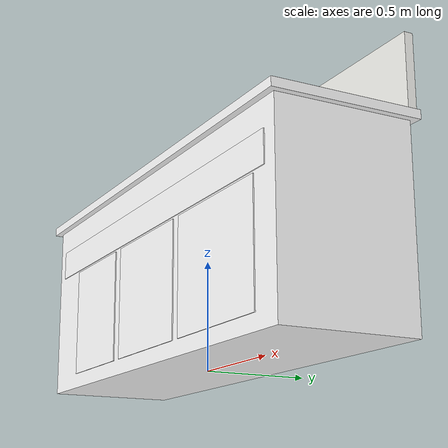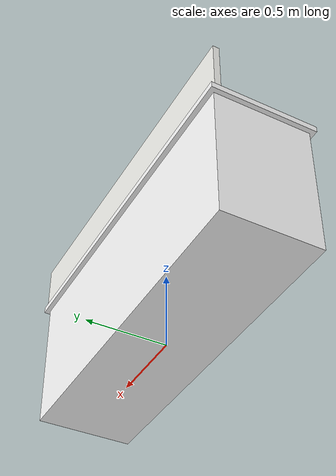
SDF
<?xml version="1.0"?>
<sdf version="1.9">
  <model name="kitchen_counter">
    <static>true</static>
    <link name="body">

      <collision name="base_collision">
        <pose>0 0 0.43 0 0 0</pose>
        <geometry><box><size>2.20 0.62 0.86</size></box></geometry>
      </collision>
      <collision name="countertop_collision">
        <pose>0 0 0.88 0 0 0</pose>
        <geometry><box><size>2.26 0.68 0.04</size></box></geometry>
      </collision>
      <collision name="backsplash_collision">
        <pose>0 0.30 1.06 0 0 0</pose>
        <geometry><box><size>2.26 0.04 0.32</size></box></geometry>
      </collision>
      <collision name="sink_basin_collision">
        <pose>-0.55 0.02 0.89 0 0 0</pose>
        <geometry><box><size>0.42 0.30 0.03</size></box></geometry>
      </collision>
      <collision name="faucet_stem_collision">
        <pose>-0.55 0.10 1.03 0 0 0</pose>
        <geometry><box><size>0.03 0.03 0.18</size></box></geometry>
      </collision>
      <collision name="cooktop_collision">
        <pose>0.68 0.00 0.90 0 0 0</pose>
        <geometry><box><size>0.56 0.36 0.02</size></box></geometry>
      </collision>
      <collision name="drawer_strip_collision">
        <pose>0 -0.30 0.67 0 0 0</pose>
        <geometry><box><size>2.06 0.03 0.14</size></box></geometry>
      </collision>
      <collision name="cabinet_front_left_collision">
        <pose>-0.58 -0.30 0.33 0 0 0</pose>
        <geometry><box><size>0.48 0.03 0.52</size></box></geometry>
      </collision>
      <collision name="cabinet_front_center_collision">
        <pose>0.00 -0.30 0.33 0 0 0</pose>
        <geometry><box><size>0.56 0.03 0.52</size></box></geometry>
      </collision>
      <collision name="cabinet_front_right_collision">
        <pose>0.64 -0.30 0.33 0 0 0</pose>
        <geometry><box><size>0.62 0.03 0.52</size></box></geometry>
      </collision>
      <visual name="base_visual">
        <pose>0 0 0.43 0 0 0</pose>
        <geometry><box><size>2.20 0.62 0.86</size></box></geometry>
        <material>
          <ambient>1 1 1 1</ambient>
          <diffuse>1 1 1 1</diffuse>
          <specular>0.05 0.05 0.05 1</specular>
          <pbr>
            <metal>
              <albedo_map>materials/textures/wood_albedo.jpg</albedo_map>
              <normal_map>materials/textures/wood_normal.jpg</normal_map>
              <roughness_map>materials/textures/wood_roughness.jpg</roughness_map>
              <metalness>0.0</metalness>
            </metal>
          </pbr>
        </material>
      </visual>

      <visual name="countertop_visual">
        <pose>0 0 0.88 0 0 0</pose>
        <geometry><box><size>2.26 0.68 0.04</size></box></geometry>
        <material><ambient>1 1 1 1</ambient><diffuse>1 1 1 1</diffuse><specular>0.05 0.05 0.05 1</specular><pbr><metal><albedo_map>materials/textures/top_albedo.jpg</albedo_map><normal_map>materials/textures/top_normal.jpg</normal_map><roughness_map>materials/textures/top_roughness.jpg</roughness_map><metalness>0.0</metalness></metal></pbr></material>
      </visual>
      <visual name="backsplash_visual">
        <pose>0 0.30 1.06 0 0 0</pose>
        <geometry><box><size>2.26 0.04 0.32</size></box></geometry>
        <material><ambient>0.86 0.86 0.84 1</ambient><diffuse>0.96 0.96 0.94 1</diffuse></material>
      </visual>

      <visual name="sink_basin">
        <pose>-0.55 0.02 0.89 0 0 0</pose>
        <geometry><box><size>0.42 0.30 0.03</size></box></geometry>
        <material><ambient>0.55 0.56 0.58 1</ambient><diffuse>0.75 0.76 0.78 1</diffuse></material>
      </visual>
      <visual name="faucet_stem">
        <pose>-0.55 0.10 1.03 0 0 0</pose>
        <geometry><box><size>0.03 0.03 0.18</size></box></geometry>
        <material><ambient>0.45 0.45 0.46 1</ambient><diffuse>0.62 0.62 0.64 1</diffuse></material>
      </visual>
      <visual name="cooktop_visual">
        <pose>0.68 0.00 0.90 0 0 0</pose>
        <geometry><box><size>0.56 0.36 0.02</size></box></geometry>
        <material><ambient>0.08 0.08 0.09 1</ambient><diffuse>0.14 0.14 0.15 1</diffuse></material>
      </visual>

      <visual name="drawer_strip">
        <pose>0 -0.30 0.67 0 0 0</pose>
        <geometry><box><size>2.06 0.03 0.14</size></box></geometry>
        <material><ambient>1 1 1 1</ambient><diffuse>1 1 1 1</diffuse><specular>0.05 0.05 0.05 1</specular><pbr><metal><albedo_map>materials/textures/wood_albedo.jpg</albedo_map><normal_map>materials/textures/wood_normal.jpg</normal_map><roughness_map>materials/textures/wood_roughness.jpg</roughness_map><metalness>0.0</metalness></metal></pbr></material>
      </visual>
      <visual name="cabinet_front_left">
        <pose>-0.58 -0.30 0.33 0 0 0</pose>
        <geometry><box><size>0.48 0.03 0.52</size></box></geometry>
        <material><ambient>1 1 1 1</ambient><diffuse>1 1 1 1</diffuse><specular>0.05 0.05 0.05 1</specular><pbr><metal><albedo_map>materials/textures/wood_albedo.jpg</albedo_map><normal_map>materials/textures/wood_normal.jpg</normal_map><roughness_map>materials/textures/wood_roughness.jpg</roughness_map><metalness>0.0</metalness></metal></pbr></material>
      </visual>
      <visual name="cabinet_front_center">
        <pose>0.00 -0.30 0.33 0 0 0</pose>
        <geometry><box><size>0.56 0.03 0.52</size></box></geometry>
        <material><ambient>1 1 1 1</ambient><diffuse>1 1 1 1</diffuse><specular>0.05 0.05 0.05 1</specular><pbr><metal><albedo_map>materials/textures/wood_albedo.jpg</albedo_map><normal_map>materials/textures/wood_normal.jpg</normal_map><roughness_map>materials/textures/wood_roughness.jpg</roughness_map><metalness>0.0</metalness></metal></pbr></material>
      </visual>
      <visual name="cabinet_front_right">
        <pose>0.64 -0.30 0.33 0 0 0</pose>
        <geometry><box><size>0.62 0.03 0.52</size></box></geometry>
        <material><ambient>1 1 1 1</ambient><diffuse>1 1 1 1</diffuse><specular>0.05 0.05 0.05 1</specular><pbr><metal><albedo_map>materials/textures/wood_albedo.jpg</albedo_map><normal_map>materials/textures/wood_normal.jpg</normal_map><roughness_map>materials/textures/wood_roughness.jpg</roughness_map><metalness>0.0</metalness></metal></pbr></material>
      </visual>

    </link>
  </model>
</sdf>
